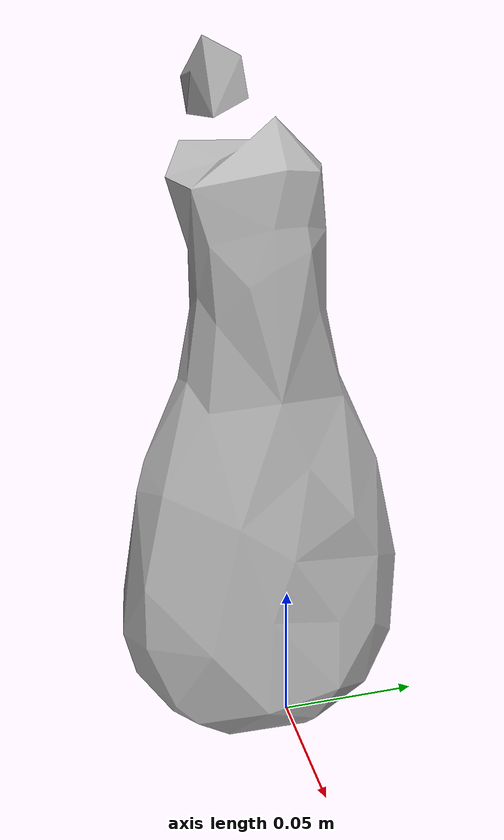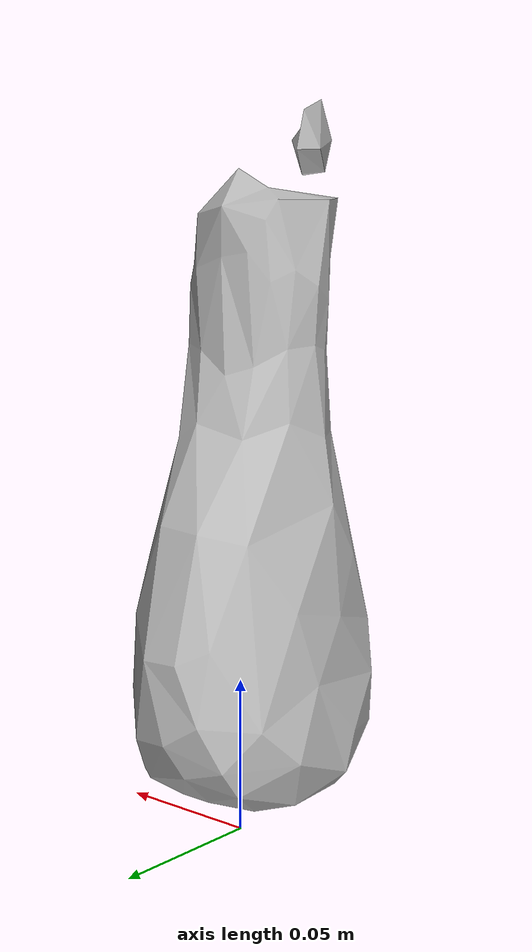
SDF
<?xml version='1.0'?>
<sdf version="1.4">
  <model name="aunt_jemima_original_syrup">
    <static>false</static>
    <link name="link">
      <inertial>
        <pose>0.003363500655369938 -0.010433081331012152 0.10443171996696138 3.1230943017781545 0.00040631282557202864 -2.963170748287762</pose>
        <mass>0.08773417526160335</mass>
        <inertia>
          <ixx>0.0003211113710538578</ixx>
          <ixy>5.443998595429597e-21</ixy>
          <ixz>1.222303880149295e-21</ixz>
          <iyy>0.0003059168172515584</iyy>
          <iyz>-9.525737360604509e-21</iyz>
          <izz>6.745183429791992e-05</izz>
        </inertia>
      </inertial>
      <collision name="collision">
        <geometry>
          <mesh>
            <!-- Use a downsampled mesh for collisions -->
            <uri>model:///aunt_jemima_original_syrup/aunt_jemima_original_syrup_250_collision.obj</uri>
	        </mesh>
        </geometry>
        <surface>
      </surface>
      </collision>
      <visual name="visual">
        <geometry>
          <mesh>
            <uri>model:///aunt_jemima_original_syrup/optimized_tsdf_texture_mapped_mesh.obj</uri>
	        </mesh>
        </geometry>
        <material>
          <script>
            <uri>model:///aunt_jemima_original_syrup/aunt_jemima_original_syrup.material</uri>
            <name>aunt_jemima_original_syrup</name>
          </script>
        </material>
      </visual>
    </link>
  </model>
</sdf>
